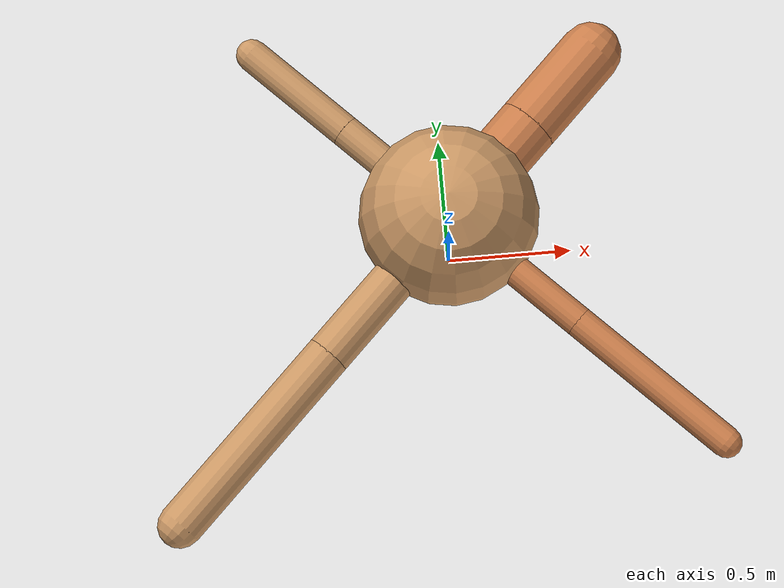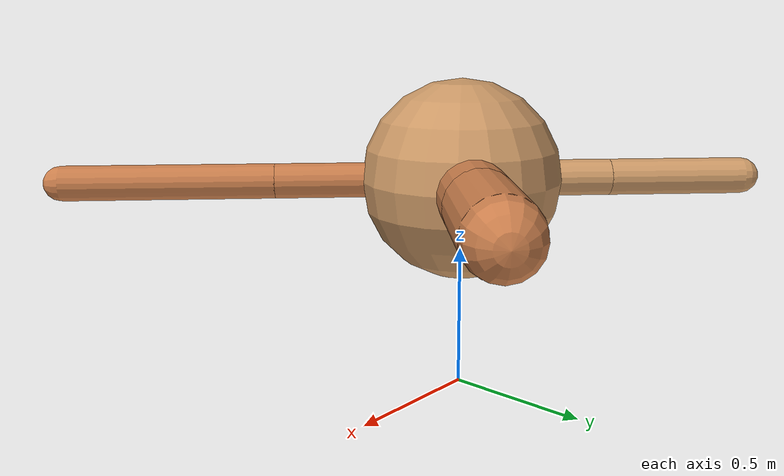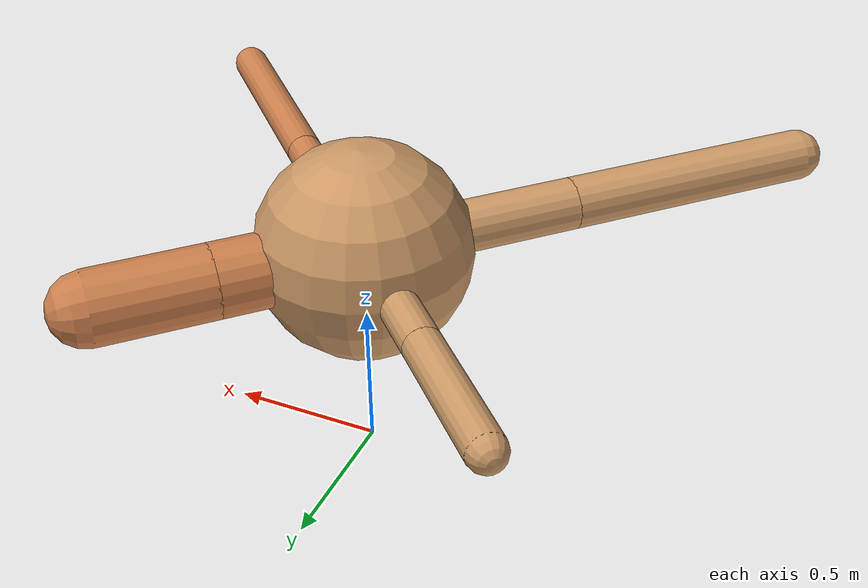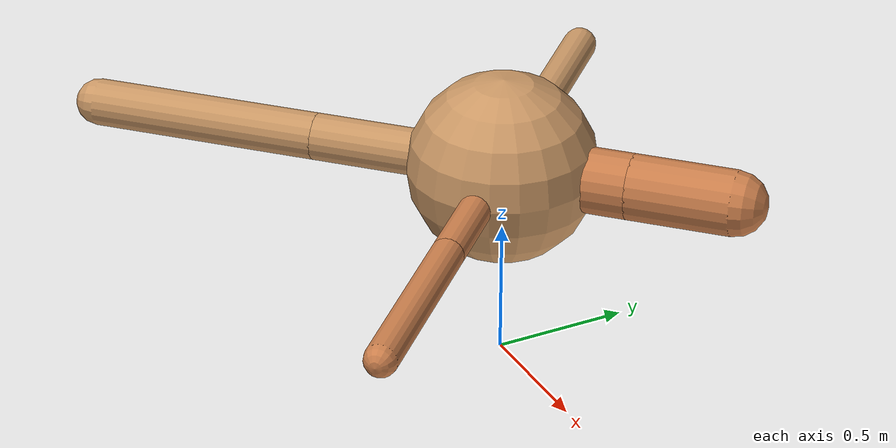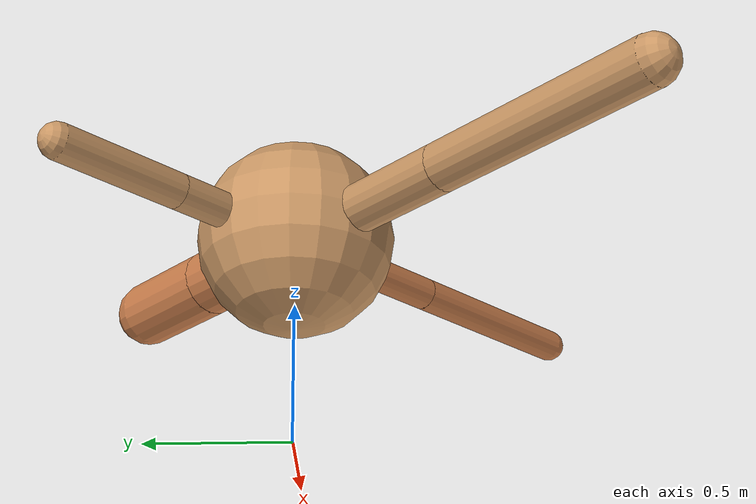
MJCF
<?xml version="1.0" ?>
<mujoco model="ant">

	<compiler angle="degree" coordinate="local" inertiafromgeom="true"/>

	<option integrator="RK4" timestep="0.01"/>

	<custom>

		<numeric data="0.0 0.0 0.55 1.0 0.0 0.0 0.0 0.0 1.0 0.0 -1.0 0.0 -1.0 0.0 1.0" name="init_qpos"/>

	</custom>

	<default>

		<joint armature="1" damping="1" limited="true"/>

		<geom conaffinity="0" condim="3" density="5.0" friction="1.5 0.1 0.1" margin="0.01" rgba="0.8 0.6 0.4 1"/>

	</default>

	<worldbody>

		<body name="torso" pos="0 0 0.75">

			<geom name="torso_geom" pos="0 0 0" size="0.3457158432798248" type="sphere"/>

			<!--joint armature="0" damping="0" limited="false" margin="0.01" name="root" pos="0 0 0" type="free"/-->

			<body name="front_left_leg" pos="0 0 0">

				<geom fromto="0 0 0 0.2 0.2 0" name="aux_1_geom" size="0.11887091472288537" type="capsule" rgba=".8 .5 .3 1"/>

				<body name="aux_1" pos="0.2 0.2 0">

					<joint axis="0 0 1" name="hip_1" pos="0.0 0.0 0.0" range="-40 40" type="hinge"/>

					<geom fromto="0 0 0 0.13351658309464368 0.13351658309464368 0" name="left_leg_geom" size="0.11887091472288537" type="capsule" rgba=".8 .5 .3 1"/>

					<body pos="0.13351658309464368 0.13351658309464368 0" name="front_left_foot">

						<joint axis="-1 1 0" name="ankle_1" pos="0.0 0.0 0.0" range="30 100" type="hinge"/>

						<geom fromto="0 0 0 0.26703316618928735 0.26703316618928735 0" name="left_ankle_geom" size="0.11887091472288537" type="capsule" rgba=".8 .5 .3 1"/>

					</body>

				</body>

			</body>

			<body name="front_right_leg" pos="0 0 0">

				<geom fromto="0 0 0 -0.2 0.2 0" name="aux_2_geom" size="0.06253404789981527" type="capsule"/>

				<body name="aux_2" pos="-0.2 0.2 0">

					<joint axis="0 0 1" name="hip_2" pos="0.0 0.0 0.0" range="-40 40" type="hinge"/>

					<geom fromto="0 0 0 -0.16713148617650442 0.16713148617650442 0" name="right_leg_geom" size="0.06253404789981527" type="capsule"/>

					<body pos="-0.16713148617650442 0.16713148617650442 0" name="front_right_foot">

						<joint axis="1 1 0" name="ankle_2" pos="0.0 0.0 0.0" range="-100 -30" type="hinge"/>

						<geom fromto="0 0 0 -0.33426297235300884 0.33426297235300884 0" name="right_ankle_geom" size="0.06253404789981527" type="capsule"/>

					</body>

				</body>

			</body>

			<body name="left_back_leg" pos="0 0 0">

				<geom fromto="0 0 0 -0.2 -0.2 0" name="aux_3_geom" size="0.08529791170614795" type="capsule"/>

				<body name="aux_3" pos="-0.2 -0.2 0">

					<joint axis="0 0 1" name="hip_3" pos="0.0 0.0 0.0" range="-40 40" type="hinge"/>

					<geom fromto="0 0 0 -0.2980243097862996 -0.2980243097862996 0" name="back_leg_geom" size="0.08529791170614795" type="capsule"/>

					<body pos="-0.2980243097862996 -0.2980243097862996 0" name="left_back_foot">

						<joint axis="-1 1 0" name="ankle_3" pos="0.0 0.0 0.0" range="-100 -30" type="hinge"/>

						<geom fromto="0 0 0 -0.5960486195725992 -0.5960486195725992 0" name="third_ankle_geom" size="0.08529791170614795" type="capsule"/>

					</body>

				</body>

			</body>

			<body name="right_back_leg" pos="0 0 0">

				<geom fromto="0 0 0 0.2 -0.2 0" name="aux_4_geom" size="0.05940520694071283" type="capsule" rgba=".8 .5 .3 1"/>

				<body name="aux_4" pos="0.2 -0.2 0">

					<joint axis="0 0 1" name="hip_4" pos="0.0 0.0 0.0" range="-40 40" type="hinge"/>

					<geom fromto="0 0 0 0.2523610151389707 -0.2523610151389707 0" name="rightback_leg_geom" size="0.05940520694071283" type="capsule" rgba=".8 .5 .3 1"/>

					<body pos="0.2523610151389707 -0.2523610151389707 0" name="right_back_foot">

						<joint axis="1 1 0" name="ankle_4" pos="0.0 0.0 0.0" range="30 100" type="hinge"/>

						<geom fromto="0 0 0 0.5047220302779414 -0.5047220302779414 0" name="fourth_ankle_geom" size="0.05940520694071283" type="capsule" rgba=".8 .5 .3 1"/>

					</body>

				</body>

			</body>

		</body>

	</worldbody>

	<actuator>

		<motor ctrllimited="true" ctrlrange="-1.0 1.0" joint="hip_4" gear="150"/>

		<motor ctrllimited="true" ctrlrange="-1.0 1.0" joint="ankle_4" gear="150"/>

		<motor ctrllimited="true" ctrlrange="-1.0 1.0" joint="hip_1" gear="150"/>

		<motor ctrllimited="true" ctrlrange="-1.0 1.0" joint="ankle_1" gear="150"/>

		<motor ctrllimited="true" ctrlrange="-1.0 1.0" joint="hip_2" gear="150"/>

		<motor ctrllimited="true" ctrlrange="-1.0 1.0" joint="ankle_2" gear="150"/>

		<motor ctrllimited="true" ctrlrange="-1.0 1.0" joint="hip_3" gear="150"/>

		<motor ctrllimited="true" ctrlrange="-1.0 1.0" joint="ankle_3" gear="150"/>

	</actuator>

</mujoco>
